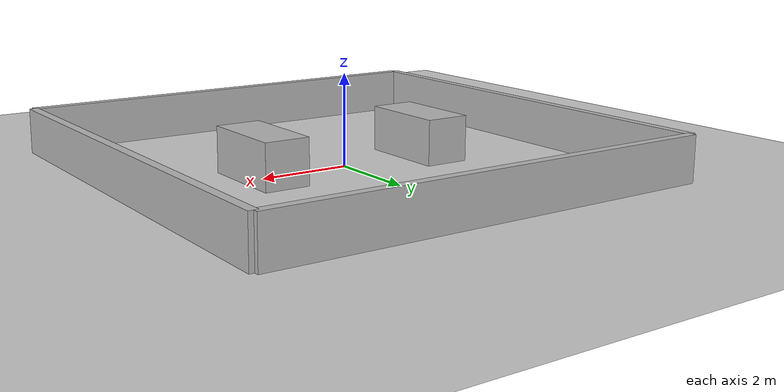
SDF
<?xml version="1.0" ?>
<sdf version="1.6">
  <world name="warehouse_world">

    <include>
      <uri>model://ground_plane</uri>
    </include>

    <include>
      <uri>model://sun</uri>
    </include>

    <!-- Wall 1 -->
    <model name="wall_1">
      <static>true</static>
      <pose>0 5 0.5 0 0 0</pose>
      <link name="link">
        <collision name="collision">
          <geometry>
            <box>
              <size>10 0.2 1</size>
            </box>
          </geometry>
        </collision>
        <visual name="visual">
          <geometry>
            <box>
              <size>10 0.2 1</size>
            </box>
          </geometry>
        </visual>
      </link>
    </model>

    <!-- Wall 2 -->
    <model name="wall_2">
      <static>true</static>
      <pose>0 -5 0.5 0 0 0</pose>
      <link name="link">
        <collision name="collision">
          <geometry>
            <box>
              <size>10 0.2 1</size>
            </box>
          </geometry>
        </collision>
        <visual name="visual">
          <geometry>
            <box>
              <size>10 0.2 1</size>
            </box>
          </geometry>
        </visual>
      </link>
    </model>

    <!-- Wall 3 -->
    <model name="wall_3">
      <static>true</static>
      <pose>5 0 0.5 0 0 1.57</pose>
      <link name="link">
        <collision name="collision">
          <geometry>
            <box>
              <size>10 0.2 1</size>
            </box>
          </geometry>
        </collision>
        <visual name="visual">
          <geometry>
            <box>
              <size>10 0.2 1</size>
            </box>
          </geometry>
        </visual>
      </link>
    </model>

    <!-- Wall 4 -->
    <model name="wall_4">
      <static>true</static>
      <pose>-5 0 0.5 0 0 1.57</pose>
      <link name="link">
        <collision name="collision">
          <geometry>
            <box>
              <size>10 0.2 1</size>
            </box>
          </geometry>
        </collision>
        <visual name="visual">
          <geometry>
            <box>
              <size>10 0.2 1</size>
            </box>
          </geometry>
        </visual>
      </link>
    </model>

    <!-- Shelf A -->
    <model name="shelf_a">
      <static>true</static>
      <pose>-2 0 0.5 0 0 0</pose>
      <link name="link">
        <collision name="collision">
          <geometry>
            <box>
              <size>1 2 1</size>
            </box>
          </geometry>
        </collision>
        <visual name="visual">
          <geometry>
            <box>
              <size>1 2 1</size>
            </box>
          </geometry>
        </visual>
      </link>
    </model>

    <!-- Shelf B -->
    <model name="shelf_b">
      <static>true</static>
      <pose>2 0 0.5 0 0 0</pose>
      <link name="link">
        <collision name="collision">
          <geometry>
            <box>
              <size>1 2 1</size>
            </box>
          </geometry>
        </collision>
        <visual name="visual">
          <geometry>
            <box>
              <size>1 2 1</size>
            </box>
          </geometry>
        </visual>
      </link>
    </model>

  </world>
</sdf>
